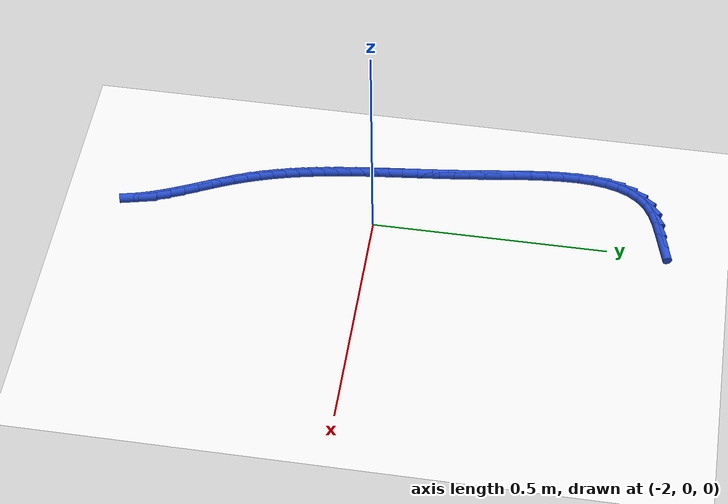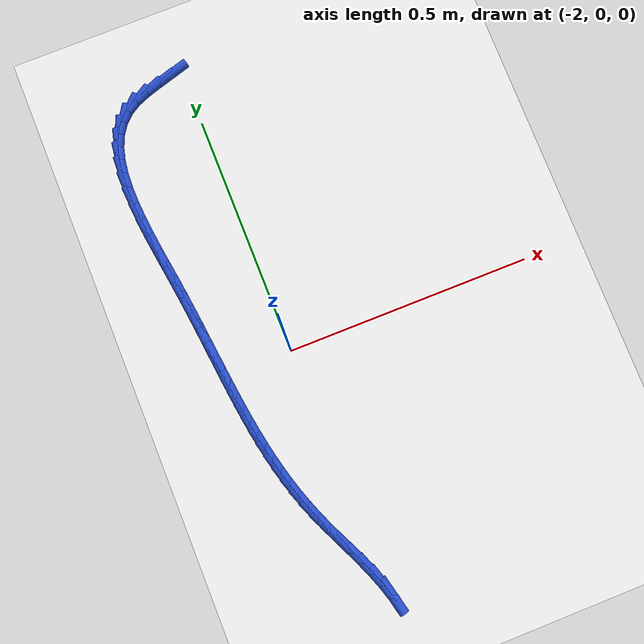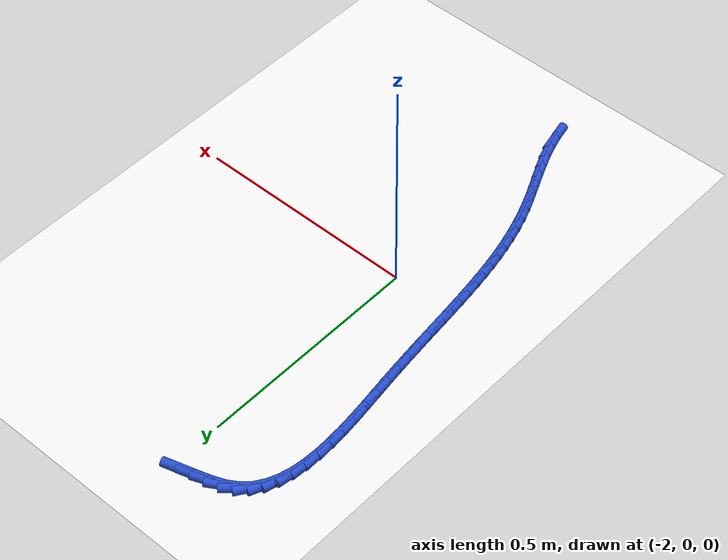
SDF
<sdf version="1.6">
 <world name="default">
  <model name="ground_plane">
   <static>1</static>
   <link name="link">
    <collision name="collision">
     <geometry><plane><normal>0 0 1</normal><size>100 100</size></plane></geometry>
     <surface><friction><ode><mu>100</mu><mu2>50</mu2></ode></friction></surface>
    </collision>
    <visual name="visual">
     <cast_shadows>0</cast_shadows>
     <geometry><plane><normal>0 0 1</normal><size>100 100</size></plane></geometry>
     <material>
      <script><uri>file://media/materials/scripts/gazebo.material</uri><name>Gazebo/WhiteGlow</name></script>
     </material>
    </visual>
   </link>
  </model>
  <model name="line">
   <link name="link_105">
    <pose>-2.0229746771732935 0.6167526609537006 0.01 0 1.57 0.2847581120850709</pose>
    <collision name="collision">
     <geometry><cylinder><radius>0.01</radius><length>0.08</length></cylinder></geometry>
    </collision>
    <visual name="visual">
     <material>
      <script><name>Gazebo/Blue</name><uri>file://media/materials/scripts/gazebo.material</uri></script>
     </material>
     <geometry><cylinder><radius>0.01</radius><length>0.08</length></cylinder></geometry>
    </visual>
   </link>
   <link name="link_106">
    <pose>-2.0529218958057918 0.6079867216073023 0.01 0 1.57 0.30347895282706466</pose>
    <collision name="collision">
     <geometry><cylinder><radius>0.01</radius><length>0.08</length></cylinder></geometry>
    </collision>
    <visual name="visual">
     <material>
      <script><name>Gazebo/Blue</name><uri>file://media/materials/scripts/gazebo.material</uri></script>
     </material>
     <geometry><cylinder><radius>0.01</radius><length>0.08</length></cylinder></geometry>
    </visual>
   </link>
   <link name="link_107">
    <pose>-2.0817590768025553 0.5989562943113372 0.01 0 1.57 0.38688680710033435</pose>
    <collision name="collision">
     <geometry><cylinder><radius>0.01</radius><length>0.08</length></cylinder></geometry>
    </collision>
    <visual name="visual">
     <material>
      <script><name>Gazebo/Blue</name><uri>file://media/materials/scripts/gazebo.material</uri></script>
     </material>
     <geometry><cylinder><radius>0.01</radius><length>0.08</length></cylinder></geometry>
    </visual>
   </link>
   <link name="link_108">
    <pose>-2.108122436986668 0.5882153252086132 0.01 0 1.57 0.5519388270144273</pose>
    <collision name="collision">
     <geometry><cylinder><radius>0.01</radius><length>0.08</length></cylinder></geometry>
    </collision>
    <visual name="visual">
     <material>
      <script><name>Gazebo/Blue</name><uri>file://media/materials/scripts/gazebo.material</uri></script>
     </material>
     <geometry><cylinder><radius>0.01</radius><length>0.08</length></cylinder></geometry>
    </visual>
   </link>
   <link name="link_109">
    <pose>-2.130664387797526 0.574334532463114 0.01 0 1.57 0.7750682194207461</pose>
    <collision name="collision">
     <geometry><cylinder><radius>0.01</radius><length>0.08</length></cylinder></geometry>
    </collision>
    <visual name="visual">
     <material>
      <script><name>Gazebo/Blue</name><uri>file://media/materials/scripts/gazebo.material</uri></script>
     </material>
     <geometry><cylinder><radius>0.01</radius><length>0.08</length></cylinder></geometry>
    </visual>
   </link>
   <link name="link_110">
    <pose>-2.1487480433293413 0.5566206763744252 0.01 0 1.57 0.9891231706349242</pose>
    <collision name="collision">
     <geometry><cylinder><radius>0.01</radius><length>0.08</length></cylinder></geometry>
    </collision>
    <visual name="visual">
     <material>
      <script><name>Gazebo/Blue</name><uri>file://media/materials/scripts/gazebo.material</uri></script>
     </material>
     <geometry><cylinder><radius>0.01</radius><length>0.08</length></cylinder></geometry>
    </visual>
   </link>
   <link name="link_111">
    <pose>-2.1627096358284215 0.5353883310697726 0.01 0 1.57 1.1727001171059723</pose>
    <collision name="collision">
     <geometry><cylinder><radius>0.01</radius><length>0.08</length></cylinder></geometry>
    </collision>
    <visual name="visual">
     <material>
      <script><name>Gazebo/Blue</name><uri>file://media/materials/scripts/gazebo.material</uri></script>
     </material>
     <geometry><cylinder><radius>0.01</radius><length>0.08</length></cylinder></geometry>
    </visual>
   </link>
   <link name="link_112">
    <pose>-2.17295570537681 0.5110248852764321 0.01 0 1.57 1.3202598378299282</pose>
    <collision name="collision">
     <geometry><cylinder><radius>0.01</radius><length>0.08</length></cylinder></geometry>
    </collision>
    <visual name="visual">
     <material>
      <script><name>Gazebo/Blue</name><uri>file://media/materials/scripts/gazebo.material</uri></script>
     </material>
     <geometry><cylinder><radius>0.01</radius><length>0.08</length></cylinder></geometry>
    </visual>
   </link>
   <link name="link_113">
    <pose>-2.179892792056551 0.4839177277216804 0.01 0 1.57 1.4347056511874179</pose>
    <collision name="collision">
     <geometry><cylinder><radius>0.01</radius><length>0.08</length></cylinder></geometry>
    </collision>
    <visual name="visual">
     <material>
      <script><name>Gazebo/Blue</name><uri>file://media/materials/scripts/gazebo.material</uri></script>
     </material>
     <geometry><cylinder><radius>0.01</radius><length>0.08</length></cylinder></geometry>
    </visual>
   </link>
   <link name="link_114">
    <pose>-2.183927435949688 0.4544542471327937 0.01 0 1.57 1.5218814163316068</pose>
    <collision name="collision">
     <geometry><cylinder><radius>0.01</radius><length>0.08</length></cylinder></geometry>
    </collision>
    <visual name="visual">
     <material>
      <script><name>Gazebo/Blue</name><uri>file://media/materials/scripts/gazebo.material</uri></script>
     </material>
     <geometry><cylinder><radius>0.01</radius><length>0.08</length></cylinder></geometry>
    </visual>
   </link>
   <link name="link_115">
    <pose>-2.1854661771382666 0.42302183223704876 0.01 0 1.57 -1.5541194307486763</pose>
    <collision name="collision">
     <geometry><cylinder><radius>0.01</radius><length>0.08</length></cylinder></geometry>
    </collision>
    <visual name="visual">
     <material>
      <script><name>Gazebo/Blue</name><uri>file://media/materials/scripts/gazebo.material</uri></script>
     </material>
     <geometry><cylinder><radius>0.01</radius><length>0.08</length></cylinder></geometry>
    </visual>
   </link>
   <link name="link_116">
    <pose>-2.1849155557043303 0.3900078717617217 0.01 0 1.57 -1.505598979232202</pose>
    <collision name="collision">
     <geometry><cylinder><radius>0.01</radius><length>0.08</length></cylinder></geometry>
    </collision>
    <visual name="visual">
     <material>
      <script><name>Gazebo/Blue</name><uri>file://media/materials/scripts/gazebo.material</uri></script>
     </material>
     <geometry><cylinder><radius>0.01</radius><length>0.08</length></cylinder></geometry>
    </visual>
   </link>
   <link name="link_117">
    <pose>-2.182682111729923 0.35579975443408907 0.01 0 1.57 -1.4708947409645765</pose>
    <collision name="collision">
     <geometry><cylinder><radius>0.01</radius><length>0.08</length></cylinder></geometry>
    </collision>
    <visual name="visual">
     <material>
      <script><name>Gazebo/Blue</name><uri>file://media/materials/scripts/gazebo.material</uri></script>
     </material>
     <geometry><cylinder><radius>0.01</radius><length>0.08</length></cylinder></geometry>
    </visual>
   </link>
   <link name="link_118">
    <pose>-2.1791723852970892 0.3207848689814273 0.01 0 1.57 -1.4478257656518772</pose>
    <collision name="collision">
     <geometry><cylinder><radius>0.01</radius><length>0.08</length></cylinder></geometry>
    </collision>
    <visual name="visual">
     <material>
      <script><name>Gazebo/Blue</name><uri>file://media/materials/scripts/gazebo.material</uri></script>
     </material>
     <geometry><cylinder><radius>0.01</radius><length>0.08</length></cylinder></geometry>
    </visual>
   </link>
   <link name="link_119">
    <pose>-2.1747929164878728 0.28535060413101276 0.01 0 1.57 -1.4350924675597134</pose>
    <collision name="collision">
     <geometry><cylinder><radius>0.01</radius><length>0.08</length></cylinder></geometry>
    </collision>
    <visual name="visual">
     <material>
      <script><name>Gazebo/Blue</name><uri>file://media/materials/scripts/gazebo.material</uri></script>
     </material>
     <geometry><cylinder><radius>0.01</radius><length>0.08</length></cylinder></geometry>
    </visual>
   </link>
   <link name="link_120">
    <pose>-2.1699502453843182 0.24988434861012246 0.01 0 1.57 -1.432152569425399</pose>
    <collision name="collision">
     <geometry><cylinder><radius>0.01</radius><length>0.08</length></cylinder></geometry>
    </collision>
    <visual name="visual">
     <material>
      <script><name>Gazebo/Blue</name><uri>file://media/materials/scripts/gazebo.material</uri></script>
     </material>
     <geometry><cylinder><radius>0.01</radius><length>0.08</length></cylinder></geometry>
    </visual>
   </link>
   <link name="link_121">
    <pose>-2.165050912068469 0.2147734911460315 0.01 0 1.57 -1.4387379217237264</pose>
    <collision name="collision">
     <geometry><cylinder><radius>0.01</radius><length>0.08</length></cylinder></geometry>
    </collision>
    <visual name="visual">
     <material>
      <script><name>Gazebo/Blue</name><uri>file://media/materials/scripts/gazebo.material</uri></script>
     </material>
     <geometry><cylinder><radius>0.01</radius><length>0.08</length></cylinder></geometry>
    </visual>
   </link>
   <link name="link_122">
    <pose>-2.1604836850441695 0.18038986998149628 0.01 0 1.57 -1.4485830239878599</pose>
    <collision name="collision">
     <geometry><cylinder><radius>0.01</radius><length>0.08</length></cylinder></geometry>
    </collision>
    <visual name="visual">
     <material>
      <script><name>Gazebo/Blue</name><uri>file://media/materials/scripts/gazebo.material</uri></script>
     </material>
     <geometry><cylinder><radius>0.01</radius><length>0.08</length></cylinder></geometry>
    </visual>
   </link>
   <link name="link_123">
    <pose>-2.1563663754634224 0.14686823028525794 0.01 0 1.57 -1.4563247399629193</pose>
    <collision name="collision">
     <geometry><cylinder><radius>0.01</radius><length>0.08</length></cylinder></geometry>
    </collision>
    <visual name="visual">
     <material>
      <script><name>Gazebo/Blue</name><uri>file://media/materials/scripts/gazebo.material</uri></script>
     </material>
     <geometry><cylinder><radius>0.01</radius><length>0.08</length></cylinder></geometry>
    </visual>
   </link>
   <link name="link_124">
    <pose>-2.152605601856214 0.11415851947976186 0.01 0 1.57 -1.4615953503487094</pose>
    <collision name="collision">
     <geometry><cylinder><radius>0.01</radius><length>0.08</length></cylinder></geometry>
    </collision>
    <visual name="visual">
     <material>
      <script><name>Gazebo/Blue</name><uri>file://media/materials/scripts/gazebo.material</uri></script>
     </material>
     <geometry><cylinder><radius>0.01</radius><length>0.08</length></cylinder></geometry>
    </visual>
   </link>
   <link name="link_125">
    <pose>-2.1491023972753265 0.08220579758376563 0.01 0 1.57 -1.4641771995881934</pose>
    <collision name="collision">
     <geometry><cylinder><radius>0.01</radius><length>0.08</length></cylinder></geometry>
    </collision>
    <visual name="visual">
     <material>
      <script><name>Gazebo/Blue</name><uri>file://media/materials/scripts/gazebo.material</uri></script>
     </material>
     <geometry><cylinder><radius>0.01</radius><length>0.08</length></cylinder></geometry>
    </visual>
   </link>
   <link name="link_126">
    <pose>-2.1457577947735404 0.050955124616026894 0.01 0 1.57 -1.4638663727717693</pose>
    <collision name="collision">
     <geometry><cylinder><radius>0.01</radius><length>0.08</length></cylinder></geometry>
    </collision>
    <visual name="visual">
     <material>
      <script><name>Gazebo/Blue</name><uri>file://media/materials/scripts/gazebo.material</uri></script>
     </material>
     <geometry><cylinder><radius>0.01</radius><length>0.08</length></cylinder></geometry>
    </visual>
   </link>
   <link name="link_127">
    <pose>-2.1424728274036373 0.020351560595303207 0.01 0 1.57 -1.4604781446826813</pose>
    <collision name="collision">
     <geometry><cylinder><radius>0.01</radius><length>0.08</length></cylinder></geometry>
    </collision>
    <visual name="visual">
     <material>
      <script><name>Gazebo/Blue</name><uri>file://media/materials/scripts/gazebo.material</uri></script>
     </material>
     <geometry><cylinder><radius>0.01</radius><length>0.08</length></cylinder></geometry>
    </visual>
   </link>
   <link name="link_128">
    <pose>-2.1391485282183984 -0.009659834459647798 0.01 0 1.57 -1.453853269913197</pose>
    <collision name="collision">
     <geometry><cylinder><radius>0.01</radius><length>0.08</length></cylinder></geometry>
    </collision>
    <visual name="visual">
     <material>
      <script><name>Gazebo/Blue</name><uri>file://media/materials/scripts/gazebo.material</uri></script>
     </material>
     <geometry><cylinder><radius>0.01</radius><length>0.08</length></cylinder></geometry>
    </visual>
   </link>
   <link name="link_129">
    <pose>-2.135685930270606 -0.03913400053006858 0.01 0 1.57 -1.4438651820193287</pose>
    <collision name="collision">
     <geometry><cylinder><radius>0.01</radius><length>0.08</length></cylinder></geometry>
    </collision>
    <visual name="visual">
     <material>
      <script><name>Gazebo/Blue</name><uri>file://media/materials/scripts/gazebo.material</uri></script>
     </material>
     <geometry><cylinder><radius>0.01</radius><length>0.08</length></cylinder></geometry>
    </visual>
   </link>
   <link name="link_130">
    <pose>-2.13198606661304 -0.06812587759720151 0.01 0 1.57 -1.4304280577920927</pose>
    <collision name="collision">
     <geometry><cylinder><radius>0.01</radius><length>0.08</length></cylinder></geometry>
    </collision>
    <visual name="visual">
     <material>
      <script><name>Gazebo/Blue</name><uri>file://media/materials/scripts/gazebo.material</uri></script>
     </material>
     <geometry><cylinder><radius>0.01</radius><length>0.08</length></cylinder></geometry>
    </visual>
   </link>
   <link name="link_131">
    <pose>-2.1279499702984817 -0.09669040564228898 0.01 0 1.57 -1.413505522326554</pose>
    <collision name="collision">
     <geometry><cylinder><radius>0.01</radius><length>0.08</length></cylinder></geometry>
    </collision>
    <visual name="visual">
     <material>
      <script><name>Gazebo/Blue</name><uri>file://media/materials/scripts/gazebo.material</uri></script>
     </material>
     <geometry><cylinder><radius>0.01</radius><length>0.08</length></cylinder></geometry>
    </visual>
   </link>
   <link name="link_132">
    <pose>-2.123478674379714 -0.1248825246465734 0.01 0 1.57 -1.3931195225574309</pose>
    <collision name="collision">
     <geometry><cylinder><radius>0.01</radius><length>0.08</length></cylinder></geometry>
    </collision>
    <visual name="visual">
     <material>
      <script><name>Gazebo/Blue</name><uri>file://media/materials/scripts/gazebo.material</uri></script>
     </material>
     <geometry><cylinder><radius>0.01</radius><length>0.08</length></cylinder></geometry>
    </visual>
   </link>
   <link name="link_133">
    <pose>-2.118473211909516 -0.15275717459129723 0.01 0 1.57 -1.3693586023885922</pose>
    <collision name="collision">
     <geometry><cylinder><radius>0.01</radius><length>0.08</length></cylinder></geometry>
    </collision>
    <visual name="visual">
     <material>
      <script><name>Gazebo/Blue</name><uri>file://media/materials/scripts/gazebo.material</uri></script>
     </material>
     <geometry><cylinder><radius>0.01</radius><length>0.08</length></cylinder></geometry>
    </visual>
   </link>
   <link name="link_134">
    <pose>-2.1128346159406717 -0.18036929545770283 0.01 0 1.57 -1.3423845210149883</pose>
    <collision name="collision">
     <geometry><cylinder><radius>0.01</radius><length>0.08</length></cylinder></geometry>
    </collision>
    <visual name="visual">
     <material>
      <script><name>Gazebo/Blue</name><uri>file://media/materials/scripts/gazebo.material</uri></script>
     </material>
     <geometry><cylinder><radius>0.01</radius><length>0.08</length></cylinder></geometry>
    </visual>
   </link>
   <link name="link_135">
    <pose>-2.1064639195259605 -0.20777382722703264 0.01 0 1.57 -1.3124359478947245</pose>
    <collision name="collision">
     <geometry><cylinder><radius>0.01</radius><length>0.08</length></cylinder></geometry>
    </collision>
    <visual name="visual">
     <material>
      <script><name>Gazebo/Blue</name><uri>file://media/materials/scripts/gazebo.material</uri></script>
     </material>
     <geometry><cylinder><radius>0.01</radius><length>0.08</length></cylinder></geometry>
    </visual>
   </link>
   <link name="link_136">
    <pose>-2.099262155718163 -0.23502570988052895 0.01 0 1.57 -1.2798279437049191</pose>
    <collision name="collision">
     <geometry><cylinder><radius>0.01</radius><length>0.08</length></cylinder></geometry>
    </collision>
    <visual name="visual">
     <material>
      <script><name>Gazebo/Blue</name><uri>file://media/materials/scripts/gazebo.material</uri></script>
     </material>
     <geometry><cylinder><radius>0.01</radius><length>0.08</length></cylinder></geometry>
    </visual>
   </link>
   <link name="link_137">
    <pose>-2.091130357570062 -0.26217988339943427 0.01 0 1.57 -1.2449461888682118</pose>
    <collision name="collision">
     <geometry><cylinder><radius>0.01</radius><length>0.08</length></cylinder></geometry>
    </collision>
    <visual name="visual">
     <material>
      <script><name>Gazebo/Blue</name><uri>file://media/materials/scripts/gazebo.material</uri></script>
     </material>
     <geometry><cylinder><radius>0.01</radius><length>0.08</length></cylinder></geometry>
    </visual>
   </link>
   <link name="link_138">
    <pose>-2.0819695581344395 -0.2892912877649911 0.01 0 1.57 -1.208235490314439</pose>
    <collision name="collision">
     <geometry><cylinder><radius>0.01</radius><length>0.08</length></cylinder></geometry>
    </collision>
    <visual name="visual">
     <material>
      <script><name>Gazebo/Blue</name><uri>file://media/materials/scripts/gazebo.material</uri></script>
     </material>
     <geometry><cylinder><radius>0.01</radius><length>0.08</length></cylinder></geometry>
    </visual>
   </link>
   <link name="link_139">
    <pose>-2.071680790464075 -0.3164148629584417 0.01 0 1.57 -1.1720196464674448</pose>
    <collision name="collision">
     <geometry><cylinder><radius>0.01</radius><length>0.08</length></cylinder></geometry>
    </collision>
    <visual name="visual">
     <material>
      <script><name>Gazebo/Blue</name><uri>file://media/materials/scripts/gazebo.material</uri></script>
     </material>
     <geometry><cylinder><radius>0.01</radius><length>0.08</length></cylinder></geometry>
    </visual>
   </link>
   <link name="link_140">
    <pose>-2.06022431027716 -0.34360467336104233 0.01 0 1.57 -1.1482236726665427</pose>
    <collision name="collision">
     <geometry><cylinder><radius>0.01</radius><length>0.08</length></cylinder></geometry>
    </collision>
    <visual name="visual">
     <material>
      <script><name>Gazebo/Blue</name><uri>file://media/materials/scripts/gazebo.material</uri></script>
     </material>
     <geometry><cylinder><radius>0.01</radius><length>0.08</length></cylinder></geometry>
    </visual>
   </link>
   <link name="link_141">
    <pose>-2.0479465641713164 -0.37090907356833974 0.01 0 1.57 -1.1407451144792176</pose>
    <collision name="collision">
     <geometry><cylinder><radius>0.01</radius><length>0.08</length></cylinder></geometry>
    </collision>
    <visual name="visual">
     <material>
      <script><name>Gazebo/Blue</name><uri>file://media/materials/scripts/gazebo.material</uri></script>
     </material>
     <geometry><cylinder><radius>0.01</radius><length>0.08</length></cylinder></geometry>
    </visual>
   </link>
   <link name="link_142">
    <pose>-2.0353488097622128 -0.3983741293135956 0.01 0 1.57 -1.1490310037768918</pose>
    <collision name="collision">
     <geometry><cylinder><radius>0.01</radius><length>0.08</length></cylinder></geometry>
    </collision>
    <visual name="visual">
     <material>
      <script><name>Gazebo/Blue</name><uri>file://media/materials/scripts/gazebo.material</uri></script>
     </material>
     <geometry><cylinder><radius>0.01</radius><length>0.08</length></cylinder></geometry>
    </visual>
   </link>
   <link name="link_143">
    <pose>-2.0229327187379105 -0.4260459002080618 0.01 0 1.57 -1.1730329786639901</pose>
    <collision name="collision">
     <geometry><cylinder><radius>0.01</radius><length>0.08</length></cylinder></geometry>
    </collision>
    <visual name="visual">
     <material>
      <script><name>Gazebo/Blue</name><uri>file://media/materials/scripts/gazebo.material</uri></script>
     </material>
     <geometry><cylinder><radius>0.01</radius><length>0.08</length></cylinder></geometry>
    </visual>
   </link>
   <link name="link_144">
    <pose>-2.0111999627864683 -0.45397044586298924 0.01 0 1.57 -1.2131449748372312</pose>
    <collision name="collision">
     <geometry><cylinder><radius>0.01</radius><length>0.08</length></cylinder></geometry>
    </collision>
    <visual name="visual">
     <material>
      <script><name>Gazebo/Blue</name><uri>file://media/materials/scripts/gazebo.material</uri></script>
     </material>
     <geometry><cylinder><radius>0.01</radius><length>0.08</length></cylinder></geometry>
    </visual>
   </link>
   <link name="link_145">
    <pose>-2.0006522135959472 -0.4821938258896291 0.01 0 1.57 -1.270033998082199</pose>
    <collision name="collision">
     <geometry><cylinder><radius>0.01</radius><length>0.08</length></cylinder></geometry>
    </collision>
    <visual name="visual">
     <material>
      <script><name>Gazebo/Blue</name><uri>file://media/materials/scripts/gazebo.material</uri></script>
     </material>
     <geometry><cylinder><radius>0.01</radius><length>0.08</length></cylinder></geometry>
    </visual>
   </link>
   <link name="link_146">
    <pose>-1.9917911428544068 -0.5107620998992342 0.01 0 1.57 -1.3443311960484483</pose>
    <collision name="collision">
     <geometry><cylinder><radius>0.01</radius><length>0.08</length></cylinder></geometry>
    </collision>
    <visual name="visual">
     <material>
      <script><name>Gazebo/Blue</name><uri>file://media/materials/scripts/gazebo.material</uri></script>
     </material>
     <geometry><cylinder><radius>0.01</radius><length>0.08</length></cylinder></geometry>
    </visual>
   </link>
  </model>
 </world>
</sdf>
